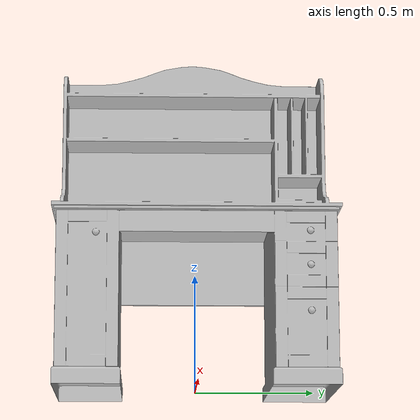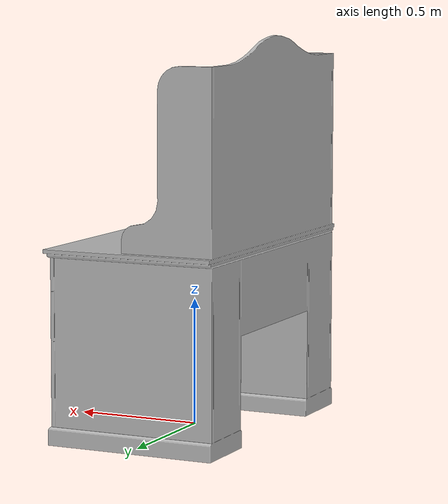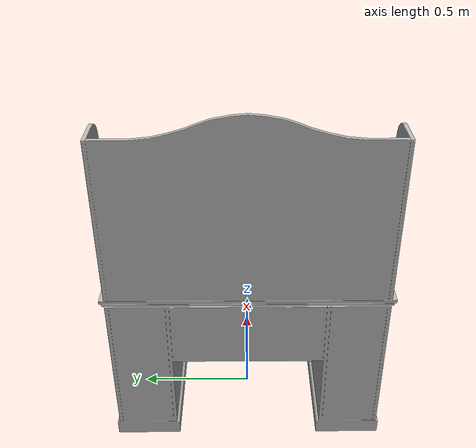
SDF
<?xml version='1.0'?>
<sdf version='1.4'>
  <model name='s__593'>
    <pose>0 0 0 0 0 0</pose>
    <static>true</static>
    <link name='link'>
      <collision name='collision'>
        <pose>0 0 0 0 0 0</pose>
        <geometry>
          <box>
            <size>0.69002 1.2 2</size>
          </box>
        </geometry>
      </collision>
      <visual name='visual'>
        <pose>0 0 0 0 0 0</pose>
        <geometry>
          <mesh><uri>model://s__593/s__593.dae</uri></mesh>
        </geometry>
      </visual>
    </link>
  </model>
</sdf>
